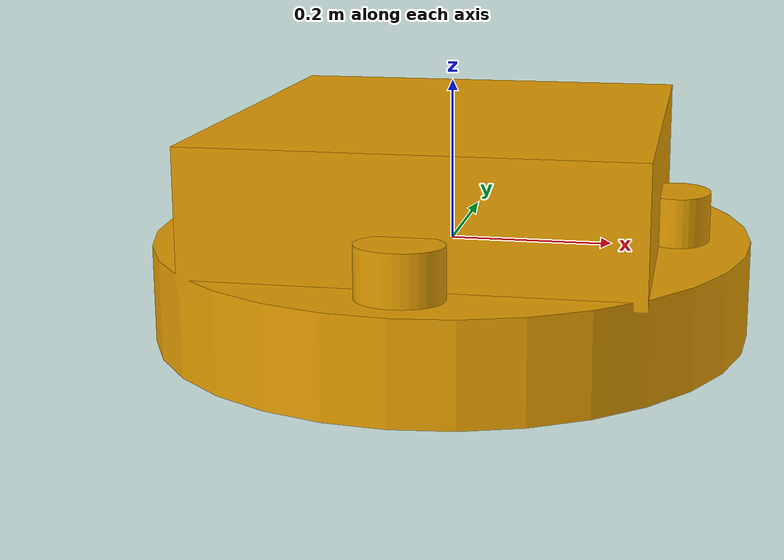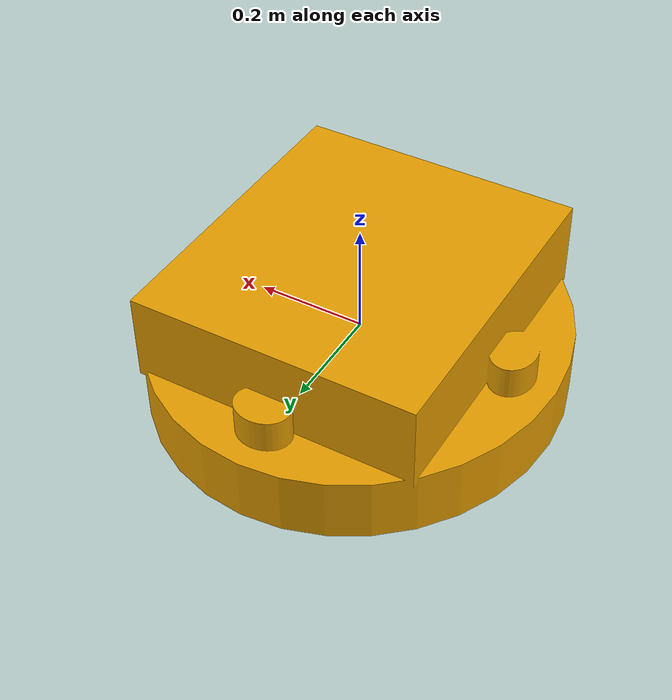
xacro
<?xml version="1.0"?>
<robot xmlns:xacro="http://www.ros.org/wiki/xacro" name="cirtesub" family="underwater">

  <xacro:arg name="robot_name" default="cirtesub"/>
  <xacro:arg name="environment" default="sim"/>
  <xacro:arg name="lookup_csv" default="config/a50_lookup.csv"/>
  <xacro:arg name="stonefish_topic" default="/cirtesub/controller/thruster_setpoints_sim"/>
  <xacro:arg name="thruster_lpf_alpha" default="0.2"/>
  <xacro:arg name="thruster_pwm_ramp_rate_us_per_s" default="250.0"/>
  <xacro:arg name="thruster_pwm_min_us" default="1250.0"/>
  <xacro:arg name="thruster_pwm_max_us" default="1750.0"/>

  <!-- TF -->

  <link name="$(arg robot_name)/base_link" tf_type="base">
    <visual>
      <origin xyz="0 0 0" rpy="0 -1.57 0"/>
      <geometry>
        <mesh
          filename="package://cirtesub_description/meshes/cirtesubdae.dae"
          scale="1 1 1"/>
      </geometry>
    </visual>
    <collision>
      <origin xyz="0 0 0" rpy="0 -1.57 0"/>
      <geometry>
        <mesh
          filename="package://cirtesub_description/meshes/cirtesubdae_colisions.dae"
          scale="1 1 1"/>
      </geometry>
    </collision>
  </link>

  <!-- Sensors -->

  <link name="$(arg robot_name)/imu_link" tf_type="sensor"/>
  <joint name="$(arg robot_name)/imu_joint" type="fixed">
    <parent link="$(arg robot_name)/base_link"/>
    <child link="$(arg robot_name)/imu_link"/>
    <origin xyz="0.0 0.0 0.0" rpy="0.0 0.0 1.57"/>
  </joint>

  <link name="$(arg robot_name)/imu_link_flu" tf_type="sensor"/>
  <joint name="$(arg robot_name)/imu_joint_flu" type="fixed">
    <parent link="$(arg robot_name)/imu_link"/>
    <child link="$(arg robot_name)/imu_link_flu"/>
    <origin xyz="0.0 0.0 0.0" rpy="3.1416 0.0 0.0"/>
  </joint>

  <link name="$(arg robot_name)/pressure_link" tf_type="sensor"/>
  <joint name="$(arg robot_name)/pressure_joint" type="fixed">
    <parent link="$(arg robot_name)/base_link"/>
    <child link="$(arg robot_name)/pressure_link"/>
    <origin xyz="0.0 0.0 -0.05" rpy="0.0 0.0 0.0"/>
  </joint>

  <link name="$(arg robot_name)/GPS" tf_type="sensor"/>
  <joint name="$(arg robot_name)/gps_joint" type="fixed">
    <parent link="$(arg robot_name)/base_link"/>
    <child link="$(arg robot_name)/GPS"/>
    <origin xyz="0.0 0.0 -0.40" rpy="0.0 0.0 0.0"/>
  </joint>

  <link name="$(arg robot_name)/dvl_link" tf_type="sensor"/>
  <joint name="$(arg robot_name)/dvl_joint" type="fixed">
    <parent link="$(arg robot_name)/base_link"/>
    <child link="$(arg robot_name)/dvl_link"/>
    <origin xyz="0.0 -0.18 0.07" rpy="0.0 0.0 -1.57"/>
  </joint>

  <link name="$(arg robot_name)/down_camera/camera" tf_type="sensor"/>
  <joint name="$(arg robot_name)/down_camera/camera_joint" type="fixed">
    <parent link="$(arg robot_name)/base_link"/>
    <child link="$(arg robot_name)/down_camera/camera"/>
    <origin xyz="-0.024 0.2 0.15" rpy="0.0 0.0 1.57"/>
  </joint>

  <link name="$(arg robot_name)/camera_down/optical_frame" tf_type="sensor"/>
  <joint name="$(arg robot_name)/camera_down/optical_frame_joint" type="fixed">
    <parent link="$(arg robot_name)/down_camera/camera"/>
    <child link="$(arg robot_name)/camera_down/optical_frame"/>
    <origin xyz="0.0 0.0 0.0" rpy="0.0 0.0 0.0"/>
  </joint>

  <!-- Thrusters -->

  <link name="$(arg robot_name)/Thruster_up_front" tf_type="thruster"/>
  <joint name="$(arg robot_name)/Thruster_up_front" type="fixed">
    <parent link="$(arg robot_name)/base_link"/>
    <child link="$(arg robot_name)/Thruster_up_front"/>
    <origin xyz="0.27 0.0 0.0" rpy="1.57 1.57 0"/>
  </joint>

  <link name="$(arg robot_name)/Thruster_up_back" tf_type="thruster"/>
  <joint name="$(arg robot_name)/Thruster_up_back" type="fixed">
    <parent link="$(arg robot_name)/base_link"/>
    <child link="$(arg robot_name)/Thruster_up_back"/>
    <origin xyz="-0.27 0.0 0.0" rpy="1.57 1.57 0.0"/>
  </joint>

  <link name="$(arg robot_name)/Thruster_up_left" tf_type="thruster"/>
  <joint name="$(arg robot_name)/Thruster_up_left" type="fixed">
    <parent link="$(arg robot_name)/base_link"/>
    <child link="$(arg robot_name)/Thruster_up_left"/>
    <origin xyz="0.0 -0.3 0.0" rpy="1.57 1.57 0"/>
  </joint>

  <link name="$(arg robot_name)/Thruster_up_right" tf_type="thruster"/>
  <joint name="$(arg robot_name)/Thruster_up_right" type="fixed">
    <parent link="$(arg robot_name)/base_link"/>
    <child link="$(arg robot_name)/Thruster_up_right"/>
    <origin xyz="0.0 0.30 0.0" rpy="1.57 1.57 0"/>
  </joint>

  <link name="$(arg robot_name)/Thruster_down_backleft" tf_type="thruster"/>
  <joint name="$(arg robot_name)/Thruster_down_backleft" type="fixed">
    <parent link="$(arg robot_name)/base_link"/>
    <child link="$(arg robot_name)/Thruster_down_backleft"/>
    <origin xyz="-0.165 -0.23 0.076" rpy="0 0.0 2.35619"/>
  </joint>

  <link name="$(arg robot_name)/Thruster_down_backright" tf_type="thruster"/>
  <joint name="$(arg robot_name)/Thruster_down_backright" type="fixed">
    <parent link="$(arg robot_name)/base_link"/>
    <child link="$(arg robot_name)/Thruster_down_backright"/>
    <origin xyz="-0.165 0.23 0.076" rpy="0 0.0 -2.35619"/>
  </joint>

  <link name="$(arg robot_name)/Thruster_down_frontleft" tf_type="thruster"/>
  <joint name="$(arg robot_name)/Thruster_down_frontleft" type="fixed">
    <parent link="$(arg robot_name)/base_link"/>
    <child link="$(arg robot_name)/Thruster_down_frontleft"/>
    <origin xyz="0.165 -0.23 0.076" rpy="0 0.0 0.785398"/>
  </joint>

  <link name="$(arg robot_name)/Thruster_down_frontright" tf_type="thruster"/>
  <joint name="$(arg robot_name)/Thruster_down_frontright" type="fixed">
    <parent link="$(arg robot_name)/base_link"/>
    <child link="$(arg robot_name)/Thruster_down_frontright"/>
    <origin xyz="0.165 0.23 0.076" rpy="0 0.0 -0.7854"/>
  </joint>

  <!-- ROS2 CONTROL -->

  <ros2_control name="$(arg robot_name)_thrusters" type="system">
    <hardware>
      <plugin>sura_hardware_interface/ThrustersSystem</plugin>
      <param name="environment">$(arg environment)</param>
      <param name="thruster_lpf_alpha">$(arg thruster_lpf_alpha)</param>
      <param name="thruster_pwm_ramp_rate_us_per_s">$(arg thruster_pwm_ramp_rate_us_per_s)</param>
      <param name="thruster_pwm_min_us">$(arg thruster_pwm_min_us)</param>
      <param name="thruster_pwm_max_us">$(arg thruster_pwm_max_us)</param>
    </hardware>

    <joint name="$(arg robot_name)/Thruster_up_front">
      <command_interface name="effort"/>
      <state_interface name="effort"/>
      <param name="lookup_csv">$(arg lookup_csv)</param>
      <param name="stonefish_topic">$(arg stonefish_topic)</param>
      <param name="inverted">false</param>
      <param name="pwm_offset">3.0</param>
      <param name="channel">2</param>

      <param name="controller">thruster_test_controller</param>
      <param name="controller">body_force</param>
      <param name="controller">body_velocity</param>
      <param name="controller">position_hold</param>
      <param name="controller">stabilize</param>
      <param name="controller">depth_hold</param>
    </joint>

    <joint name="$(arg robot_name)/Thruster_up_back">
      <command_interface name="effort"/>
      <state_interface name="effort"/>
      <param name="lookup_csv">$(arg lookup_csv)</param>
      <param name="stonefish_topic">$(arg stonefish_topic)</param>
      <param name="inverted">false</param>
      <param name="pwm_offset">8.0</param>
      <param name="channel">5</param>
    </joint>

    <joint name="$(arg robot_name)/Thruster_up_left">
      <command_interface name="effort"/>
      <state_interface name="effort"/>
      <param name="lookup_csv">$(arg lookup_csv)</param>
      <param name="stonefish_topic">$(arg stonefish_topic)</param>
      <param name="inverted">true</param>
      <param name="pwm_offset">3.0</param>
      <param name="channel">1</param>
    </joint>

    <joint name="$(arg robot_name)/Thruster_up_right">
      <command_interface name="effort"/>
      <state_interface name="effort"/>
      <param name="lookup_csv">$(arg lookup_csv)</param>
      <param name="stonefish_topic">$(arg stonefish_topic)</param>
      <param name="inverted">true</param>
      <param name="pwm_offset">3.0</param>
      <param name="channel">4</param>
    </joint>

    <joint name="$(arg robot_name)/Thruster_down_backleft">
      <command_interface name="effort"/>
      <state_interface name="effort"/>
      <param name="lookup_csv">$(arg lookup_csv)</param>
      <param name="stonefish_topic">$(arg stonefish_topic)</param>
      <param name="inverted">true</param>
      <param name="pwm_offset">0.0</param>
      <param name="channel">6</param>
    </joint>

    <joint name="$(arg robot_name)/Thruster_down_backright">
      <command_interface name="effort"/>
      <state_interface name="effort"/>
      <param name="lookup_csv">$(arg lookup_csv)</param>
      <param name="stonefish_topic">$(arg stonefish_topic)</param>
      <param name="inverted">true</param>
      <param name="pwm_offset">10.0</param>
      <param name="channel">15</param>
    </joint>

    <joint name="$(arg robot_name)/Thruster_down_frontleft">
      <command_interface name="effort"/>
      <state_interface name="effort"/>
      <param name="lookup_csv">$(arg lookup_csv)</param>
      <param name="stonefish_topic">$(arg stonefish_topic)</param>
      <param name="inverted">false</param>
      <param name="pwm_offset">0.0</param>
      <param name="channel">3</param>
    </joint>

    <joint name="$(arg robot_name)/Thruster_down_frontright">
      <command_interface name="effort"/>
      <state_interface name="effort"/>
      <param name="lookup_csv">$(arg lookup_csv)</param>
      <param name="stonefish_topic">$(arg stonefish_topic)</param>
      <param name="inverted">false</param>
      <param name="pwm_offset">0.0</param>
      <param name="channel">0</param>
    </joint>
  </ros2_control>

  <ros2_control name="$(arg robot_name)_sensors" type="system">
    <hardware>
      <plugin>sura_hardware_interface/SensorsSystem</plugin>
      <param name="environment">$(arg environment)</param>
      <param name="robot_namespace">$(arg robot_name)</param>
    </hardware>

    <sensor name="imu_sensor">
      <param name="interface">sura_hardware_interface/ImuInterface</param>
      <param name="broadcaster">imu_broadcaster</param>
      <param name="read_rate_hz">200.0</param>
      <param name="frame_id">$(arg robot_name)/imu_link</param>
      <param name="stonefish_topic">/$(arg robot_name)/stonefish/sensors/imu</param>
      <param name="msg_type">sensor_msgs/msg/Imu</param>

      <state_interface name="orientation.x"/>
      <state_interface name="orientation.y"/>
      <state_interface name="orientation.z"/>
      <state_interface name="orientation.w"/>
      <state_interface name="angular_velocity.x"/>
      <state_interface name="angular_velocity.y"/>
      <state_interface name="angular_velocity.z"/>
      <state_interface name="linear_acceleration.x"/>
      <state_interface name="linear_acceleration.y"/>
      <state_interface name="linear_acceleration.z"/>
      <state_interface name="sample_time.sec"/>
      <state_interface name="sample_time.nanosec"/>
    </sensor>

    <sensor name="magnetometer_sensor">
      <param name="interface">sura_hardware_interface/MagnetometerInterface</param>
      <param name="broadcaster">magnetometer_broadcaster</param>
      <param name="read_rate_hz">200.0</param>
      <param name="frame_id">$(arg robot_name)/imu_link</param>
      <param name="stonefish_topic">/$(arg robot_name)/stonefish/sensors/magnetometer</param>
      <param name="msg_type">sensor_msgs/msg/MagneticField</param>

      <state_interface name="magnetic_field.x"/>
      <state_interface name="magnetic_field.y"/>
      <state_interface name="magnetic_field.z"/>
      <state_interface name="sample_time.sec"/>
      <state_interface name="sample_time.nanosec"/>
    </sensor>

    <sensor name="pressure_sensor">
      <param name="interface">sura_hardware_interface/PressureInterface</param>
      <param name="broadcaster">pressure_broadcaster</param>
      <param name="read_rate_hz">50.0</param>
      <param name="frame_id">$(arg robot_name)/pressure_link</param>
      <param name="stonefish_topic">/$(arg robot_name)/stonefish/sensors/pressure</param>
      <param name="msg_type">sensor_msgs/msg/FluidPressure</param>

      <state_interface name="fluid_pressure"/>
    </sensor>

    <sensor name="battery_sensor">
      <param name="interface">sura_hardware_interface/BatteryInterface</param>
      <param name="broadcaster">battery_broadcaster</param>
      <param name="read_rate_hz">2.0</param>
      <param name="frame_id">$(arg robot_name)/base_link</param>
      <param name="stonefish_topic">/$(arg robot_name)/stonefish/sensors/battery</param>

      <state_interface name="voltage"/>
      <state_interface name="current"/>
      <state_interface name="present"/>
    </sensor>

    <sensor name="dvl_sensor">
      <param name="interface">sura_hardware_interface/DvlA50Interface</param>
      <param name="broadcaster">dvla50_broadcaster</param>
      <param name="broadcaster">dvla50_twist_stamped_broadcaster</param>
      <param name="read_rate_hz">10.0</param>
      <param name="frame_id">$(arg robot_name)/dvl_link</param>

      <param name="dvl_ip">192.168.1.95</param>
      <param name="dvl_port">16171</param>
      <param name="dvl_timeout_s">1.0</param>
      <param name="sim_fom">0.0</param>

      <param name="stonefish_topic">/$(arg robot_name)/stonefish/sensors/dvl/twist</param>
      <param name="stonefish_altitude_topic">/$(arg robot_name)/stonefish/sensors/dvl/altitude</param>
      <param name="msg_type">geometry_msgs/msg/TwistStamped</param>

      <state_interface name="linear_velocity.x"/>
      <state_interface name="linear_velocity.y"/>
      <state_interface name="linear_velocity.z"/>
      <state_interface name="fom"/>
      <state_interface name="altitude"/>
      <state_interface name="velocity_valid"/>
      <state_interface name="status"/>
      <state_interface name="time"/>
      <state_interface name="format_code"/>

      <state_interface name="beam0.id"/>
      <state_interface name="beam0.velocity"/>
      <state_interface name="beam0.distance"/>
      <state_interface name="beam0.rssi"/>
      <state_interface name="beam0.nsd"/>
      <state_interface name="beam0.valid"/>

      <state_interface name="beam1.id"/>
      <state_interface name="beam1.velocity"/>
      <state_interface name="beam1.distance"/>
      <state_interface name="beam1.rssi"/>
      <state_interface name="beam1.nsd"/>
      <state_interface name="beam1.valid"/>

      <state_interface name="beam2.id"/>
      <state_interface name="beam2.velocity"/>
      <state_interface name="beam2.distance"/>
      <state_interface name="beam2.rssi"/>
      <state_interface name="beam2.nsd"/>
      <state_interface name="beam2.valid"/>

      <state_interface name="beam3.id"/>
      <state_interface name="beam3.velocity"/>
      <state_interface name="beam3.distance"/>
      <state_interface name="beam3.rssi"/>
      <state_interface name="beam3.nsd"/>
      <state_interface name="beam3.valid"/>
    </sensor>
  </ros2_control>

</robot>
